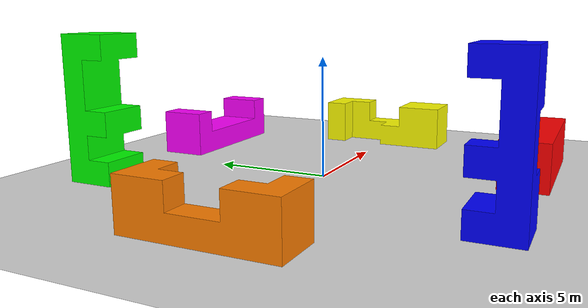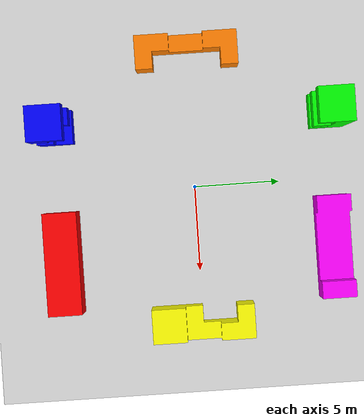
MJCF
<mujoco model="burr_puzzle">
  <compiler coordinate="local" autolimits="true" inertiafromgeom="true"/>
  <option timestep="0.002" gravity="0 0 -9.81" integrator="RK4"/>

  <asset>
    <!-- Adjust paths if your OBJs are elsewhere -->
    <mesh name="burr_piece_0" file="pieces/burr_piece_0.obj"/>
    <mesh name="burr_piece_1" file="pieces/burr_piece_1.obj"/>
    <mesh name="burr_piece_2" file="pieces/burr_piece_2.obj"/>
    <mesh name="burr_piece_3" file="pieces/burr_piece_3.obj"/>
    <mesh name="burr_piece_4" file="pieces/burr_piece_4.obj"/>
    <mesh name="burr_piece_5" file="pieces/burr_piece_5.obj"/>
  </asset>

  <default>
    <geom friction="1 0.005 0.0001" density="500" solref="0.005 1" solimp="0.9 0.99 0.001"/>
    <joint damping="1"/>
  </default>

  <worldbody>
    <light directional="true" diffuse="0.8 0.8 0.8" specular="0.2 0.2 0.2" dir="0 0 -1" pos="0 0 15"/>
    <camera name="iso" mode="trackcom" pos="18 -24 14" xyaxes="1 0 0 0 0 1"/>
    <geom name="ground" type="plane" size="100 100 1" rgba="0.85 0.85 0.85 1"/>

    <!-- START_OFFSETS = [[4,-8,1],[-8,0,1],[8,0,1],[-4,8,3],[-4,-8,3],[4,8,1]] -->
    <body name="piece0" pos="4 -8 1">
      <freejoint/>
      <geom name="g_piece0" type="mesh" mesh="burr_piece_0" rgba="1 0 0 1"/>
    </body>

    <body name="piece1" pos="-8 0 1">
      <freejoint/>
      <geom name="g_piece1" type="mesh" mesh="burr_piece_1" rgba="1 0.498 0 1"/>
    </body>

    <body name="piece2" pos="8 0 1">
      <freejoint/>
      <geom name="g_piece2" type="mesh" mesh="burr_piece_2" rgba="1 1 0 1"/>
    </body>

    <body name="piece3" pos="-4 8 3">
      <freejoint/>
      <geom name="g_piece3" type="mesh" mesh="burr_piece_3" rgba="0 1 0 1"/>
    </body>

    <body name="piece4" pos="-4 -8 3">
      <freejoint/>
      <geom name="g_piece4" type="mesh" mesh="burr_piece_4" rgba="0 0 1 1"/>
    </body>

    <body name="piece5" pos="4 8 1">
      <freejoint/>
      <geom name="g_piece5" type="mesh" mesh="burr_piece_5" rgba="1 0 1 1"/>
    </body>
  </worldbody>
</mujoco>
